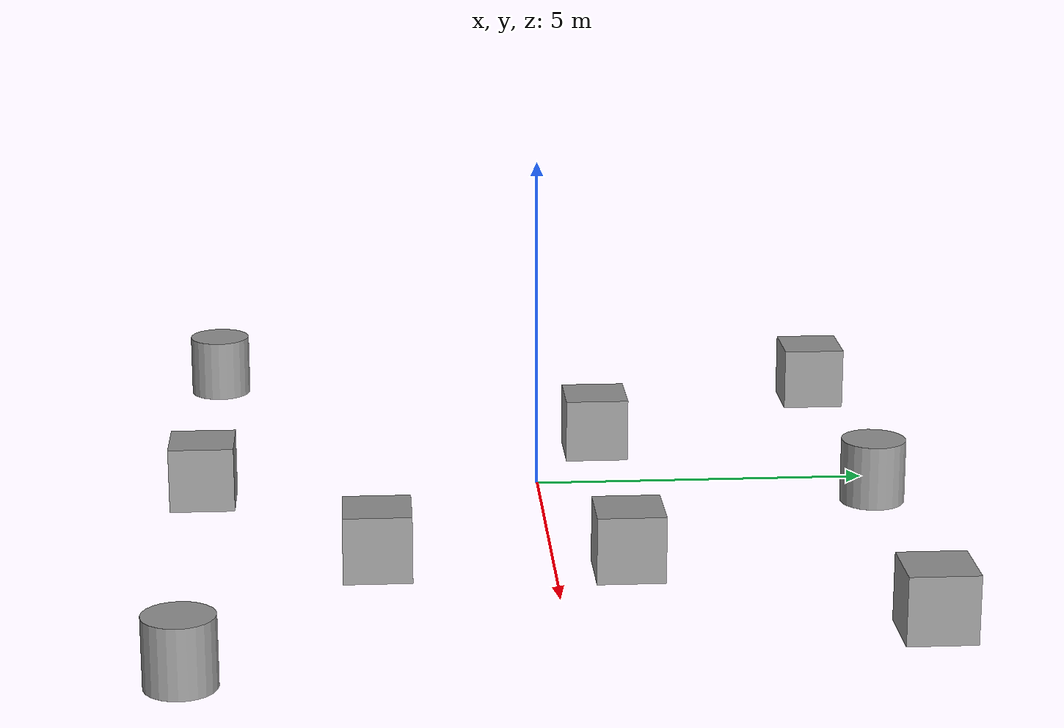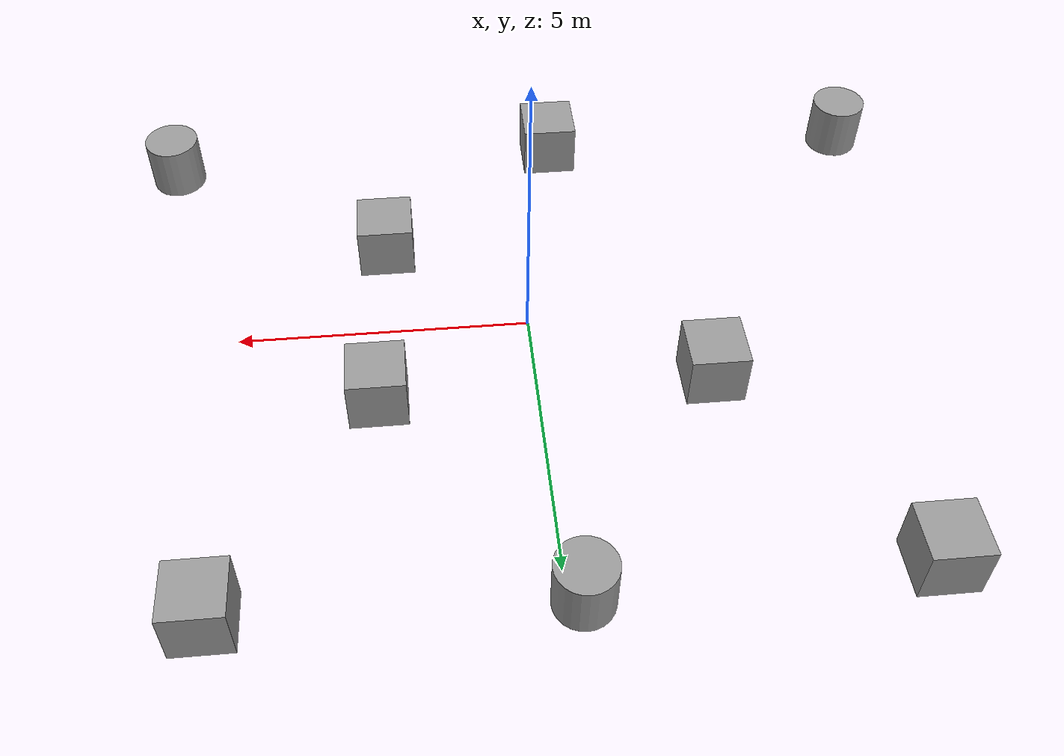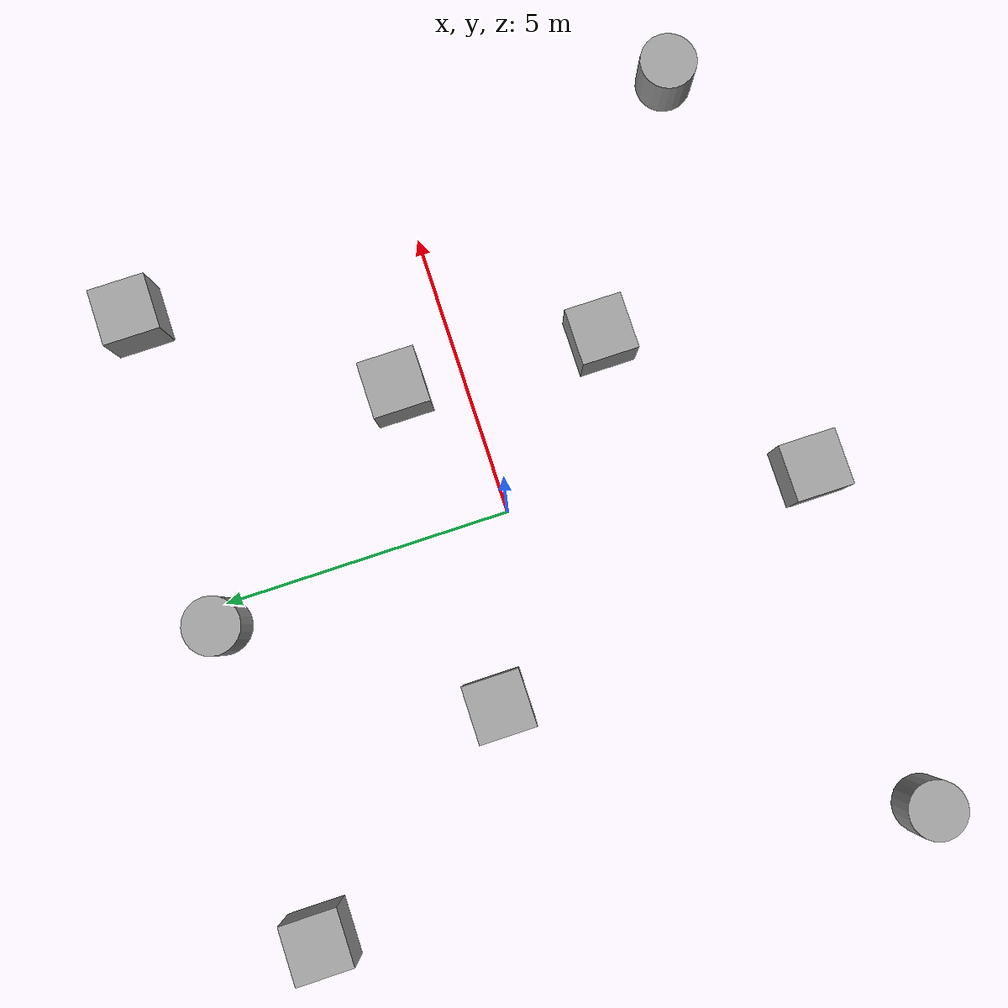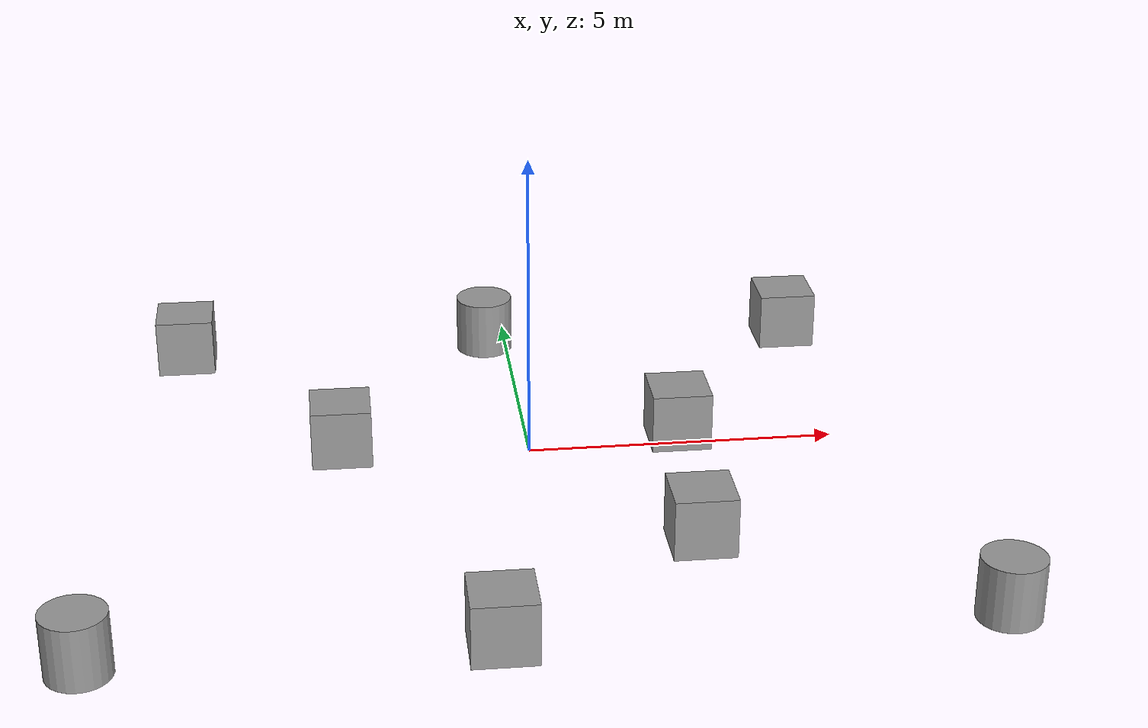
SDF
<?xml version='1.0'?>
<sdf version='1.7'>
  <model name='room2'>
    <link name='link_0'>
      <inertial>
        <mass>1000</mass>
        <inertia>
          <ixx>1000.166667</ixx>
          <ixy>0</ixy>
          <ixz>0</ixz>
          <iyy>1000.166667</iyy>
          <iyz>0</iyz>
          <izz>1000.166667</izz>
        </inertia>
      </inertial>
      <pose>5.27529 5.12658 0 0 -0 0</pose>
      <visual name='visual'>
        <pose>0 0 0 0 -0 0</pose>
        <geometry>
          <box>
            <size>1 1 1</size>
          </box>
        </geometry>
        <material>
          <lighting>1</lighting>
          <script>
            <uri>file://media/materials/scripts/gazebo.material</uri>
            <name>Gazebo/Grey</name>
          </script>
          <shader type='pixel'/>
        </material>
        <transparency>0</transparency>
        <cast_shadows>1</cast_shadows>
      </visual>
      <collision name='collision'>
        <laser_retro>0</laser_retro>
        <max_contacts>10</max_contacts>
        <pose>0 0 0 0 -0 0</pose>
        <geometry>
          <box>
            <size>1 1 1</size>
          </box>
        </geometry>
        <surface>
          <friction>
            <ode>
              <mu>1</mu>
              <mu2>1</mu2>
              <fdir1>0 0 0</fdir1>
              <slip1>0</slip1>
              <slip2>0</slip2>
            </ode>
            <torsional>
              <coefficient>1</coefficient>
              <patch_radius>0</patch_radius>
              <surface_radius>0</surface_radius>
              <use_patch_radius>1</use_patch_radius>
              <ode>
                <slip>0</slip>
              </ode>
            </torsional>
          </friction>
          <bounce>
            <restitution_coefficient>0</restitution_coefficient>
            <threshold>1e+06</threshold>
          </bounce>
          <contact>
            <collide_without_contact>0</collide_without_contact>
            <collide_without_contact_bitmask>1</collide_without_contact_bitmask>
            <collide_bitmask>1</collide_bitmask>
            <ode>
              <soft_cfm>0</soft_cfm>
              <soft_erp>0.2</soft_erp>
              <kp>1e+13</kp>
              <kd>1</kd>
              <max_vel>0.01</max_vel>
              <min_depth>0</min_depth>
            </ode>
            <bullet>
              <split_impulse>1</split_impulse>
              <split_impulse_penetration_threshold>-0.01</split_impulse_penetration_threshold>
              <soft_cfm>0</soft_cfm>
              <soft_erp>0.2</soft_erp>
              <kp>1e+13</kp>
              <kd>1</kd>
            </bullet>
          </contact>
        </surface>
      </collision>
    </link>
    <link name='link_1'>
      <inertial>
        <mass>1000</mass>
        <inertia>
          <ixx>1000.166667</ixx>
          <ixy>0</ixy>
          <ixz>0</ixz>
          <iyy>1000.166667</iyy>
          <iyz>0</iyz>
          <izz>1000.166667</izz>
        </inertia>
      </inertial>
      <pose>-5.76065 5.1276 0 0 -0 0</pose>
      <visual name='visual'>
        <pose>0 0 0 0 -0 0</pose>
        <geometry>
          <box>
            <size>1 1 1</size>
          </box>
        </geometry>
        <material>
          <lighting>1</lighting>
          <script>
            <uri>file://media/materials/scripts/gazebo.material</uri>
            <name>Gazebo/Grey</name>
          </script>
          <shader type='pixel'/>
        </material>
        <transparency>0</transparency>
        <cast_shadows>1</cast_shadows>
      </visual>
      <collision name='collision'>
        <laser_retro>0</laser_retro>
        <max_contacts>10</max_contacts>
        <pose>0 0 0 0 -0 0</pose>
        <geometry>
          <box>
            <size>1 1 1</size>
          </box>
        </geometry>
        <surface>
          <friction>
            <ode>
              <mu>1</mu>
              <mu2>1</mu2>
              <fdir1>0 0 0</fdir1>
              <slip1>0</slip1>
              <slip2>0</slip2>
            </ode>
            <torsional>
              <coefficient>1</coefficient>
              <patch_radius>0</patch_radius>
              <surface_radius>0</surface_radius>
              <use_patch_radius>1</use_patch_radius>
              <ode>
                <slip>0</slip>
              </ode>
            </torsional>
          </friction>
          <bounce>
            <restitution_coefficient>0</restitution_coefficient>
            <threshold>1e+06</threshold>
          </bounce>
          <contact>
            <collide_without_contact>0</collide_without_contact>
            <collide_without_contact_bitmask>1</collide_without_contact_bitmask>
            <collide_bitmask>1</collide_bitmask>
            <ode>
              <soft_cfm>0</soft_cfm>
              <soft_erp>0.2</soft_erp>
              <kp>1e+13</kp>
              <kd>1</kd>
              <max_vel>0.01</max_vel>
              <min_depth>0</min_depth>
            </ode>
            <bullet>
              <split_impulse>1</split_impulse>
              <split_impulse_penetration_threshold>-0.01</split_impulse_penetration_threshold>
              <soft_cfm>0</soft_cfm>
              <soft_erp>0.2</soft_erp>
              <kp>1e+13</kp>
              <kd>1</kd>
            </bullet>
          </contact>
        </surface>
      </collision>
    </link>
    <link name='link_10'>
      <inertial>
        <mass>1000</mass>
        <inertia>
          <ixx>1000.166667</ixx>
          <ixy>1000</ixy>
          <ixz>1000</ixz>
          <iyy>1000.166667</iyy>
          <iyz>1000</iyz>
          <izz>1000.166667</izz>
        </inertia>
      </inertial>
      <pose>2.65087 1.15737 0 0 -0 0</pose>
      <visual name='visual'>
        <pose>0 0 0 0 -0 0</pose>
        <geometry>
          <box>
            <size>1 1 1</size>
          </box>
        </geometry>
        <material>
          <lighting>1</lighting>
          <script>
            <uri>file://media/materials/scripts/gazebo.material</uri>
            <name>Gazebo/Grey</name>
          </script>
          <shader type='pixel'/>
        </material>
        <transparency>0</transparency>
        <cast_shadows>1</cast_shadows>
      </visual>
      <collision name='collision'>
        <laser_retro>0</laser_retro>
        <max_contacts>10</max_contacts>
        <pose>0 0 0 0 -0 0</pose>
        <geometry>
          <box>
            <size>1 1 1</size>
          </box>
        </geometry>
        <surface>
          <friction>
            <ode>
              <mu>1</mu>
              <mu2>1</mu2>
              <fdir1>0 0 0</fdir1>
              <slip1>0</slip1>
              <slip2>0</slip2>
            </ode>
            <torsional>
              <coefficient>1</coefficient>
              <patch_radius>0</patch_radius>
              <surface_radius>0</surface_radius>
              <use_patch_radius>1</use_patch_radius>
              <ode>
                <slip>0</slip>
              </ode>
            </torsional>
          </friction>
          <bounce>
            <restitution_coefficient>0</restitution_coefficient>
            <threshold>1e+06</threshold>
          </bounce>
          <contact>
            <collide_without_contact>0</collide_without_contact>
            <collide_without_contact_bitmask>1</collide_without_contact_bitmask>
            <collide_bitmask>1</collide_bitmask>
            <ode>
              <soft_cfm>0</soft_cfm>
              <soft_erp>0.2</soft_erp>
              <kp>1e+13</kp>
              <kd>1</kd>
              <max_vel>0.01</max_vel>
              <min_depth>0</min_depth>
            </ode>
            <bullet>
              <split_impulse>1</split_impulse>
              <split_impulse_penetration_threshold>-0.01</split_impulse_penetration_threshold>
              <soft_cfm>0</soft_cfm>
              <soft_erp>0.2</soft_erp>
              <kp>1e+13</kp>
              <kd>1</kd>
            </bullet>
          </contact>
        </surface>
      </collision>
    </link>
    <link name='link_2'>
      <inertial>
        <mass>1000</mass>
        <inertia>
          <ixx>1000.166667</ixx>
          <ixy>0</ixy>
          <ixz>0</ixz>
          <iyy>1000.166667</iyy>
          <iyz>0</iyz>
          <izz>1000.166667</izz>
        </inertia>
      </inertial>
      <pose>-3.0477 1.14509 0 0 -0 0</pose>
      <visual name='visual'>
        <pose>0 0 0 0 -0 0</pose>
        <geometry>
          <box>
            <size>1 1 1</size>
          </box>
        </geometry>
        <material>
          <lighting>1</lighting>
          <script>
            <uri>file://media/materials/scripts/gazebo.material</uri>
            <name>Gazebo/Grey</name>
          </script>
          <shader type='pixel'/>
        </material>
        <transparency>0</transparency>
        <cast_shadows>1</cast_shadows>
      </visual>
      <collision name='collision'>
        <laser_retro>0</laser_retro>
        <max_contacts>10</max_contacts>
        <pose>0 0 0 0 -0 0</pose>
        <geometry>
          <box>
            <size>1 1 1</size>
          </box>
        </geometry>
        <surface>
          <friction>
            <ode>
              <mu>1</mu>
              <mu2>1</mu2>
              <fdir1>0 0 0</fdir1>
              <slip1>0</slip1>
              <slip2>0</slip2>
            </ode>
            <torsional>
              <coefficient>1</coefficient>
              <patch_radius>0</patch_radius>
              <surface_radius>0</surface_radius>
              <use_patch_radius>1</use_patch_radius>
              <ode>
                <slip>0</slip>
              </ode>
            </torsional>
          </friction>
          <bounce>
            <restitution_coefficient>0</restitution_coefficient>
            <threshold>1e+06</threshold>
          </bounce>
          <contact>
            <collide_without_contact>0</collide_without_contact>
            <collide_without_contact_bitmask>1</collide_without_contact_bitmask>
            <collide_bitmask>1</collide_bitmask>
            <ode>
              <soft_cfm>0</soft_cfm>
              <soft_erp>0.2</soft_erp>
              <kp>1e+13</kp>
              <kd>1</kd>
              <max_vel>0.01</max_vel>
              <min_depth>0</min_depth>
            </ode>
            <bullet>
              <split_impulse>1</split_impulse>
              <split_impulse_penetration_threshold>-0.01</split_impulse_penetration_threshold>
              <soft_cfm>0</soft_cfm>
              <soft_erp>0.2</soft_erp>
              <kp>1e+13</kp>
              <kd>1</kd>
            </bullet>
          </contact>
        </surface>
      </collision>
    </link>
    <link name='link_3'>
      <inertial>
        <mass>1000</mass>
        <inertia>
          <ixx>1000.166667</ixx>
          <ixy>0</ixy>
          <ixz>0</ixz>
          <iyy>1000.166667</iyy>
          <iyz>0</iyz>
          <izz>1000.166667</izz>
        </inertia>
      </inertial>
      <pose>2.42176 -2.47036 0 0 -0 0</pose>
      <visual name='visual'>
        <pose>0 0 0 0 -0 0</pose>
        <geometry>
          <box>
            <size>1 1 1</size>
          </box>
        </geometry>
        <material>
          <lighting>1</lighting>
          <script>
            <uri>file://media/materials/scripts/gazebo.material</uri>
            <name>Gazebo/Grey</name>
          </script>
          <shader type='pixel'/>
        </material>
        <transparency>0</transparency>
        <cast_shadows>1</cast_shadows>
      </visual>
      <collision name='collision'>
        <laser_retro>0</laser_retro>
        <max_contacts>10</max_contacts>
        <pose>0 0 0 0 -0 0</pose>
        <geometry>
          <box>
            <size>1 1 1</size>
          </box>
        </geometry>
        <surface>
          <friction>
            <ode>
              <mu>1</mu>
              <mu2>1</mu2>
              <fdir1>0 0 0</fdir1>
              <slip1>0</slip1>
              <slip2>0</slip2>
            </ode>
            <torsional>
              <coefficient>1</coefficient>
              <patch_radius>0</patch_radius>
              <surface_radius>0</surface_radius>
              <use_patch_radius>1</use_patch_radius>
              <ode>
                <slip>0</slip>
              </ode>
            </torsional>
          </friction>
          <bounce>
            <restitution_coefficient>0</restitution_coefficient>
            <threshold>1e+06</threshold>
          </bounce>
          <contact>
            <collide_without_contact>0</collide_without_contact>
            <collide_without_contact_bitmask>1</collide_without_contact_bitmask>
            <collide_bitmask>1</collide_bitmask>
            <ode>
              <soft_cfm>0</soft_cfm>
              <soft_erp>0.2</soft_erp>
              <kp>1e+13</kp>
              <kd>1</kd>
              <max_vel>0.01</max_vel>
              <min_depth>0</min_depth>
            </ode>
            <bullet>
              <split_impulse>1</split_impulse>
              <split_impulse_penetration_threshold>-0.01</split_impulse_penetration_threshold>
              <soft_cfm>0</soft_cfm>
              <soft_erp>0.2</soft_erp>
              <kp>1e+13</kp>
              <kd>1</kd>
            </bullet>
          </contact>
        </surface>
      </collision>
    </link>
    <link name='link_4'>
      <inertial>
        <mass>1000</mass>
        <inertia>
          <ixx>1000.166667</ixx>
          <ixy>0</ixy>
          <ixz>0</ixz>
          <iyy>1000.166667</iyy>
          <iyz>0</iyz>
          <izz>1000.166667</izz>
        </inertia>
      </inertial>
      <pose>-0.903856 -5.13974 0 0 -0 0</pose>
      <visual name='visual'>
        <pose>0 0 0 0 -0 0</pose>
        <geometry>
          <box>
            <size>1 1 1</size>
          </box>
        </geometry>
        <material>
          <lighting>1</lighting>
          <script>
            <uri>file://media/materials/scripts/gazebo.material</uri>
            <name>Gazebo/Grey</name>
          </script>
          <shader type='pixel'/>
        </material>
        <transparency>0</transparency>
        <cast_shadows>1</cast_shadows>
      </visual>
      <collision name='collision'>
        <laser_retro>0</laser_retro>
        <max_contacts>10</max_contacts>
        <pose>0 0 0 0 -0 0</pose>
        <geometry>
          <box>
            <size>1 1 1</size>
          </box>
        </geometry>
        <surface>
          <friction>
            <ode>
              <mu>1</mu>
              <mu2>1</mu2>
              <fdir1>0 0 0</fdir1>
              <slip1>0</slip1>
              <slip2>0</slip2>
            </ode>
            <torsional>
              <coefficient>1</coefficient>
              <patch_radius>0</patch_radius>
              <surface_radius>0</surface_radius>
              <use_patch_radius>1</use_patch_radius>
              <ode>
                <slip>0</slip>
              </ode>
            </torsional>
          </friction>
          <bounce>
            <restitution_coefficient>0</restitution_coefficient>
            <threshold>1e+06</threshold>
          </bounce>
          <contact>
            <collide_without_contact>0</collide_without_contact>
            <collide_without_contact_bitmask>1</collide_without_contact_bitmask>
            <collide_bitmask>1</collide_bitmask>
            <ode>
              <soft_cfm>0</soft_cfm>
              <soft_erp>0.2</soft_erp>
              <kp>1e+13</kp>
              <kd>1</kd>
              <max_vel>0.01</max_vel>
              <min_depth>0</min_depth>
            </ode>
            <bullet>
              <split_impulse>1</split_impulse>
              <split_impulse_penetration_threshold>-0.01</split_impulse_penetration_threshold>
              <soft_cfm>0</soft_cfm>
              <soft_erp>0.2</soft_erp>
              <kp>1e+13</kp>
              <kd>1</kd>
            </bullet>
          </contact>
        </surface>
      </collision>
    </link>
    <link name='link_5'>
      <inertial>
        <mass>1000</mass>
        <inertia>
          <ixx>1000.145833</ixx>
          <ixy>0</ixy>
          <ixz>0</ixz>
          <iyy>1000.145833</iyy>
          <iyz>0</iyz>
          <izz>1000.125</izz>
        </inertia>
      </inertial>
      <pose>-6.86713 -5.12266 0 0 -0 0</pose>
      <visual name='visual'>
        <pose>0 0 0 0 -0 0</pose>
        <geometry>
          <cylinder>
            <radius>0.5</radius>
            <length>1</length>
          </cylinder>
        </geometry>
        <material>
          <lighting>1</lighting>
          <script>
            <uri>file://media/materials/scripts/gazebo.material</uri>
            <name>Gazebo/Grey</name>
          </script>
          <shader type='pixel'/>
        </material>
        <transparency>0</transparency>
        <cast_shadows>1</cast_shadows>
      </visual>
      <collision name='collision'>
        <laser_retro>0</laser_retro>
        <max_contacts>10</max_contacts>
        <pose>0 0 0 0 -0 0</pose>
        <geometry>
          <cylinder>
            <radius>0.5</radius>
            <length>1</length>
          </cylinder>
        </geometry>
        <surface>
          <friction>
            <ode>
              <mu>1</mu>
              <mu2>1</mu2>
              <fdir1>0 0 0</fdir1>
              <slip1>0</slip1>
              <slip2>0</slip2>
            </ode>
            <torsional>
              <coefficient>1</coefficient>
              <patch_radius>0</patch_radius>
              <surface_radius>0</surface_radius>
              <use_patch_radius>1</use_patch_radius>
              <ode>
                <slip>0</slip>
              </ode>
            </torsional>
          </friction>
          <bounce>
            <restitution_coefficient>0</restitution_coefficient>
            <threshold>1e+06</threshold>
          </bounce>
          <contact>
            <collide_without_contact>0</collide_without_contact>
            <collide_without_contact_bitmask>1</collide_without_contact_bitmask>
            <collide_bitmask>1</collide_bitmask>
            <ode>
              <soft_cfm>0</soft_cfm>
              <soft_erp>0.2</soft_erp>
              <kp>1e+13</kp>
              <kd>1</kd>
              <max_vel>0.01</max_vel>
              <min_depth>0</min_depth>
            </ode>
            <bullet>
              <split_impulse>1</split_impulse>
              <split_impulse_penetration_threshold>-0.01</split_impulse_penetration_threshold>
              <soft_cfm>0</soft_cfm>
              <soft_erp>0.2</soft_erp>
              <kp>1e+13</kp>
              <kd>1</kd>
            </bullet>
          </contact>
        </surface>
      </collision>
    </link>
    <link name='link_8'>
      <inertial>
        <mass>1000</mass>
        <inertia>
          <ixx>1000.145833</ixx>
          <ixy>0</ixy>
          <ixz>0</ixz>
          <iyy>1000.145833</iyy>
          <iyz>0</iyz>
          <izz>1000.125</izz>
        </inertia>
      </inertial>
      <pose>6.53918 -5.07746 0 0 -0 0</pose>
      <visual name='visual'>
        <pose>0 0 0 0 -0 0</pose>
        <geometry>
          <cylinder>
            <radius>0.5</radius>
            <length>1</length>
          </cylinder>
        </geometry>
        <material>
          <lighting>1</lighting>
          <script>
            <uri>file://media/materials/scripts/gazebo.material</uri>
            <name>Gazebo/Grey</name>
          </script>
          <shader type='pixel'/>
        </material>
        <transparency>0</transparency>
        <cast_shadows>1</cast_shadows>
      </visual>
      <collision name='collision'>
        <laser_retro>0</laser_retro>
        <max_contacts>10</max_contacts>
        <pose>0 0 0 0 -0 0</pose>
        <geometry>
          <cylinder>
            <radius>0.5</radius>
            <length>1</length>
          </cylinder>
        </geometry>
        <surface>
          <friction>
            <ode>
              <mu>1</mu>
              <mu2>1</mu2>
              <fdir1>0 0 0</fdir1>
              <slip1>0</slip1>
              <slip2>0</slip2>
            </ode>
            <torsional>
              <coefficient>1</coefficient>
              <patch_radius>0</patch_radius>
              <surface_radius>0</surface_radius>
              <use_patch_radius>1</use_patch_radius>
              <ode>
                <slip>0</slip>
              </ode>
            </torsional>
          </friction>
          <bounce>
            <restitution_coefficient>0</restitution_coefficient>
            <threshold>1e+06</threshold>
          </bounce>
          <contact>
            <collide_without_contact>0</collide_without_contact>
            <collide_without_contact_bitmask>1</collide_without_contact_bitmask>
            <collide_bitmask>1</collide_bitmask>
            <ode>
              <soft_cfm>0</soft_cfm>
              <soft_erp>0.2</soft_erp>
              <kp>1e+13</kp>
              <kd>1</kd>
              <max_vel>0.01</max_vel>
              <min_depth>0</min_depth>
            </ode>
            <bullet>
              <split_impulse>1</split_impulse>
              <split_impulse_penetration_threshold>-0.01</split_impulse_penetration_threshold>
              <soft_cfm>0</soft_cfm>
              <soft_erp>0.2</soft_erp>
              <kp>1e+13</kp>
              <kd>1</kd>
            </bullet>
          </contact>
        </surface>
      </collision>
    </link>
    <link name='link_9'>
      <inertial>
        <mass>1000</mass>
        <inertia>
          <ixx>1000.145833</ixx>
          <ixy>0</ixy>
          <ixz>0</ixz>
          <iyy>1000.145833</iyy>
          <iyz>0</iyz>
          <izz>1000.125</izz>
        </inertia>
      </inertial>
      <pose>-0.307767 5.25357 0 0 -0 0</pose>
      <visual name='visual'>
        <pose>0 0 0 0 -0 0</pose>
        <geometry>
          <cylinder>
            <radius>0.5</radius>
            <length>1</length>
          </cylinder>
        </geometry>
        <material>
          <lighting>1</lighting>
          <script>
            <uri>file://media/materials/scripts/gazebo.material</uri>
            <name>Gazebo/Grey</name>
          </script>
          <shader type='pixel'/>
        </material>
        <transparency>0</transparency>
        <cast_shadows>1</cast_shadows>
      </visual>
      <collision name='collision'>
        <laser_retro>0</laser_retro>
        <max_contacts>10</max_contacts>
        <pose>0 0 0 0 -0 0</pose>
        <geometry>
          <cylinder>
            <radius>0.5</radius>
            <length>1</length>
          </cylinder>
        </geometry>
        <surface>
          <friction>
            <ode>
              <mu>1</mu>
              <mu2>1</mu2>
              <fdir1>0 0 0</fdir1>
              <slip1>0</slip1>
              <slip2>0</slip2>
            </ode>
            <torsional>
              <coefficient>1</coefficient>
              <patch_radius>0</patch_radius>
              <surface_radius>0</surface_radius>
              <use_patch_radius>1</use_patch_radius>
              <ode>
                <slip>0</slip>
              </ode>
            </torsional>
          </friction>
          <bounce>
            <restitution_coefficient>0</restitution_coefficient>
            <threshold>1e+06</threshold>
          </bounce>
          <contact>
            <collide_without_contact>0</collide_without_contact>
            <collide_without_contact_bitmask>1</collide_without_contact_bitmask>
            <collide_bitmask>1</collide_bitmask>
            <ode>
              <soft_cfm>0</soft_cfm>
              <soft_erp>0.2</soft_erp>
              <kp>1e+13</kp>
              <kd>1</kd>
              <max_vel>0.01</max_vel>
              <min_depth>0</min_depth>
            </ode>
            <bullet>
              <split_impulse>1</split_impulse>
              <split_impulse_penetration_threshold>-0.01</split_impulse_penetration_threshold>
              <soft_cfm>0</soft_cfm>
              <soft_erp>0.2</soft_erp>
              <kp>1e+13</kp>
              <kd>1</kd>
            </bullet>
          </contact>
        </surface>
      </collision>
    </link>
    <static>0</static>
    <allow_auto_disable>1</allow_auto_disable>
  </model>
</sdf>
